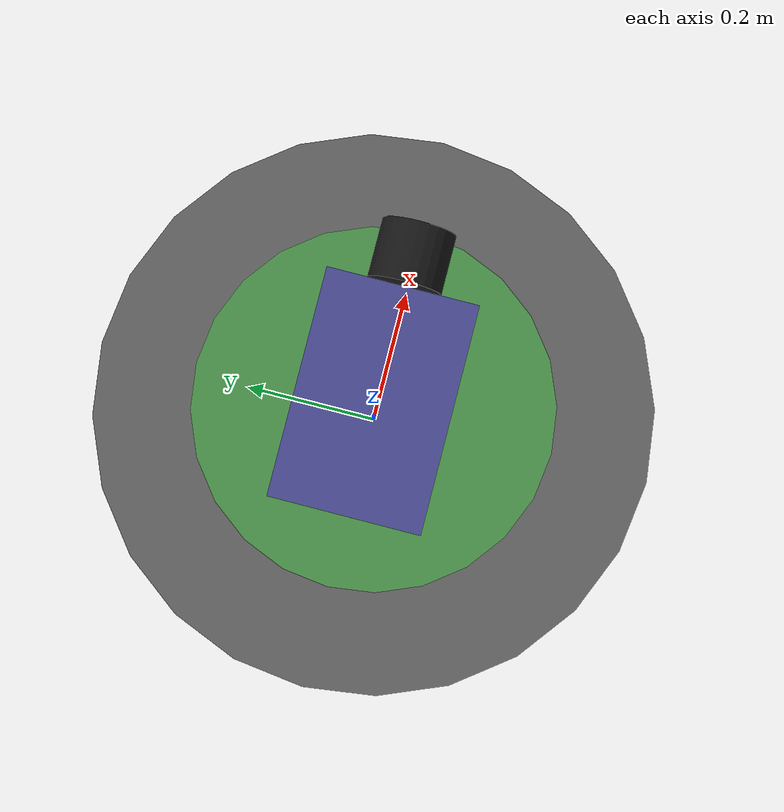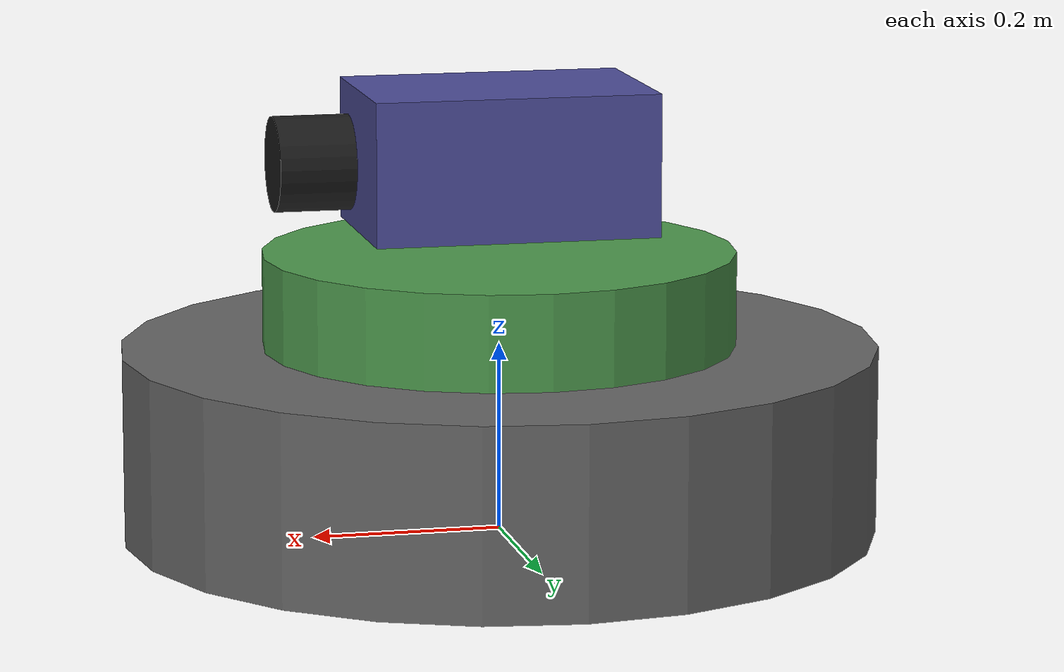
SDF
<?xml version="1.0"?>
<sdf version="1.8">
  <model name="air_defense_turret">
    <static>false</static>

    <!-- Base Link - Sabit platform -->
    <link name="base_link">
      <pose>0 0 0.1 0 0 0</pose>
      <inertial>
        <mass>50.0</mass>
        <inertia>
          <ixx>2.0</ixx><ixy>0</ixy><ixz>0</ixz>
          <iyy>2.0</iyy><iyz>0</iyz>
          <izz>3.0</izz>
        </inertia>
      </inertial>
      <visual name="base_visual">
        <geometry>
          <cylinder>
            <radius>0.4</radius>
            <length>0.2</length>
          </cylinder>
        </geometry>
        <material>
          <ambient>0.3 0.3 0.3 1</ambient>
          <diffuse>0.4 0.4 0.4 1</diffuse>
        </material>
      </visual>
      <collision name="base_collision">
        <geometry>
          <cylinder>
            <radius>0.4</radius>
            <length>0.2</length>
          </cylinder>
        </geometry>
      </collision>
    </link>

    <!-- Pan Link - Yatay dönüş (yaw) -->
    <link name="pan_link">
      <pose relative_to="base_link">0 0 0.15 0 0 0</pose>
      <inertial>
        <mass>10.0</mass>
        <inertia>
          <ixx>0.5</ixx><ixy>0</ixy><ixz>0</ixz>
          <iyy>0.5</iyy><iyz>0</iyz>
          <izz>0.8</izz>
        </inertia>
      </inertial>
      <visual name="pan_visual">
        <geometry>
          <cylinder>
            <radius>0.25</radius>
            <length>0.1</length>
          </cylinder>
        </geometry>
        <material>
          <ambient>0.2 0.4 0.2 1</ambient>
          <diffuse>0.3 0.6 0.3 1</diffuse>
        </material>
      </visual>
      <collision name="pan_collision">
        <geometry>
          <cylinder>
            <radius>0.25</radius>
            <length>0.1</length>
          </cylinder>
        </geometry>
      </collision>
    </link>

    <!-- Tilt Link - Dikey hareket (pitch) -->
    <link name="tilt_link">
      <pose relative_to="pan_link">0 0 0.15 0 0 0</pose>
      <inertial>
        <mass>5.0</mass>
        <inertia>
          <ixx>0.2</ixx><ixy>0</ixy><ixz>0</ixz>
          <iyy>0.3</iyy><iyz>0</iyz>
          <izz>0.2</izz>
        </inertia>
      </inertial>
      <visual name="tilt_visual">
        <geometry>
          <box>
            <size>0.3 0.2 0.15</size>
          </box>
        </geometry>
        <material>
          <ambient>0.2 0.2 0.4 1</ambient>
          <diffuse>0.3 0.3 0.6 1</diffuse>
        </material>
      </visual>
      <collision name="tilt_collision">
        <geometry>
          <box>
            <size>0.3 0.2 0.15</size>
          </box>
        </geometry>
      </collision>

      <!-- Kamera Sensörü -->
      <sensor name="camera" type="camera">
        <pose>0.2 0 0 0 0 0</pose>
        <always_on>true</always_on>
        <update_rate>30</update_rate>
        <camera>
          <horizontal_fov>1.396</horizontal_fov>
          <image>
            <width>640</width>
            <height>480</height>
            <format>R8G8B8</format>
          </image>
          <clip>
            <near>0.1</near>
            <far>100</far>
          </clip>
        </camera>
        <topic>hss/camera</topic>
      </sensor>

      <!-- IMU Sensörü -->
      <sensor name="imu" type="imu">
        <always_on>true</always_on>
        <update_rate>100</update_rate>
        <imu>
          <angular_velocity>
            <x><noise type="gaussian"><mean>0</mean><stddev>0.001</stddev></noise></x>
            <y><noise type="gaussian"><mean>0</mean><stddev>0.001</stddev></noise></y>
            <z><noise type="gaussian"><mean>0</mean><stddev>0.001</stddev></noise></z>
          </angular_velocity>
          <linear_acceleration>
            <x><noise type="gaussian"><mean>0</mean><stddev>0.01</stddev></noise></x>
            <y><noise type="gaussian"><mean>0</mean><stddev>0.01</stddev></noise></y>
            <z><noise type="gaussian"><mean>0</mean><stddev>0.01</stddev></noise></z>
          </linear_acceleration>
        </imu>
        <topic>hss/imu</topic>
      </sensor>
    </link>

    <!-- Kamera Lens Visual -->
    <link name="camera_lens">
      <pose relative_to="tilt_link">0.2 0 0 0 1.5708 0</pose>
      <inertial>
        <mass>0.1</mass>
        <inertia>
          <ixx>0.001</ixx><ixy>0</ixy><ixz>0</ixz>
          <iyy>0.001</iyy><iyz>0</iyz>
          <izz>0.001</izz>
        </inertia>
      </inertial>
      <visual name="lens_visual">
        <geometry>
          <cylinder>
            <radius>0.05</radius>
            <length>0.08</length>
          </cylinder>
        </geometry>
        <material>
          <ambient>0.1 0.1 0.1 1</ambient>
          <diffuse>0.1 0.1 0.1 1</diffuse>
        </material>
      </visual>
    </link>

    <!-- Base sabitlemesi -->
    <joint name="base_fixed" type="fixed">
      <parent>world</parent>
      <child>base_link</child>
    </joint>

    <!-- Pan Joint - Yatay dönüş -->
    <joint name="pan_joint" type="revolute">
      <parent>base_link</parent>
      <child>pan_link</child>
      <axis>
        <xyz>0 0 1</xyz>
        <limit>
          <lower>-3.14159</lower>
          <upper>3.14159</upper>
          <effort>100</effort>
          <velocity>1.0</velocity>
        </limit>
        <dynamics>
          <damping>0.5</damping>
          <friction>0.1</friction>
        </dynamics>
      </axis>
    </joint>

    <!-- Tilt Joint - Dikey hareket -->
    <joint name="tilt_joint" type="revolute">
      <parent>pan_link</parent>
      <child>tilt_link</child>
      <axis>
        <xyz>0 1 0</xyz>
        <limit>
          <lower>-0.785</lower>  <!-- -45 derece -->
          <upper>1.047</upper>   <!-- +60 derece -->
          <effort>50</effort>
          <velocity>0.5</velocity>
        </limit>
        <dynamics>
          <damping>0.3</damping>
          <friction>0.1</friction>
        </dynamics>
      </axis>
    </joint>

    <!-- Kamera lens sabitlemesi -->
    <joint name="lens_fixed" type="fixed">
      <parent>tilt_link</parent>
      <child>camera_lens</child>
    </joint>

    <!-- Joint Controller Plugin -->
    <plugin
      filename="gz-sim-joint-position-controller-system"
      name="gz::sim::systems::JointPositionController">
      <joint_name>pan_joint</joint_name>
      <topic>hss/turret/pan_cmd</topic>
      <p_gain>50</p_gain>
      <i_gain>0.1</i_gain>
      <d_gain>1</d_gain>
    </plugin>

    <plugin
      filename="gz-sim-joint-position-controller-system"
      name="gz::sim::systems::JointPositionController">
      <joint_name>tilt_joint</joint_name>
      <topic>hss/turret/tilt_cmd</topic>
      <p_gain>30</p_gain>
      <i_gain>0.1</i_gain>
      <d_gain>0.5</d_gain>
    </plugin>

    <!-- Joint State Publisher -->
    <plugin
      filename="gz-sim-joint-state-publisher-system"
      name="gz::sim::systems::JointStatePublisher">
      <joint_name>pan_joint</joint_name>
      <joint_name>tilt_joint</joint_name>
      <topic>hss/turret/joint_states</topic>
    </plugin>

  </model>
</sdf>
